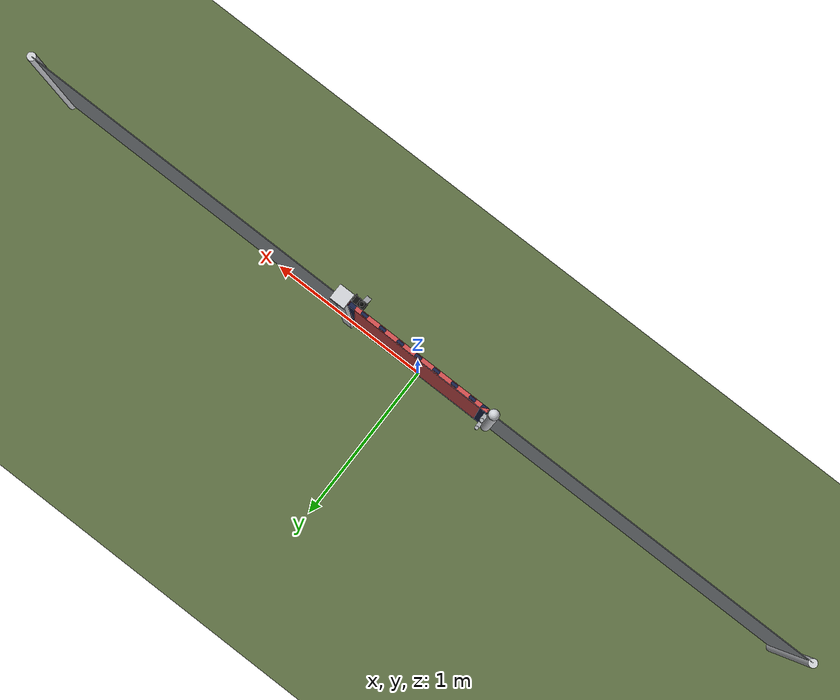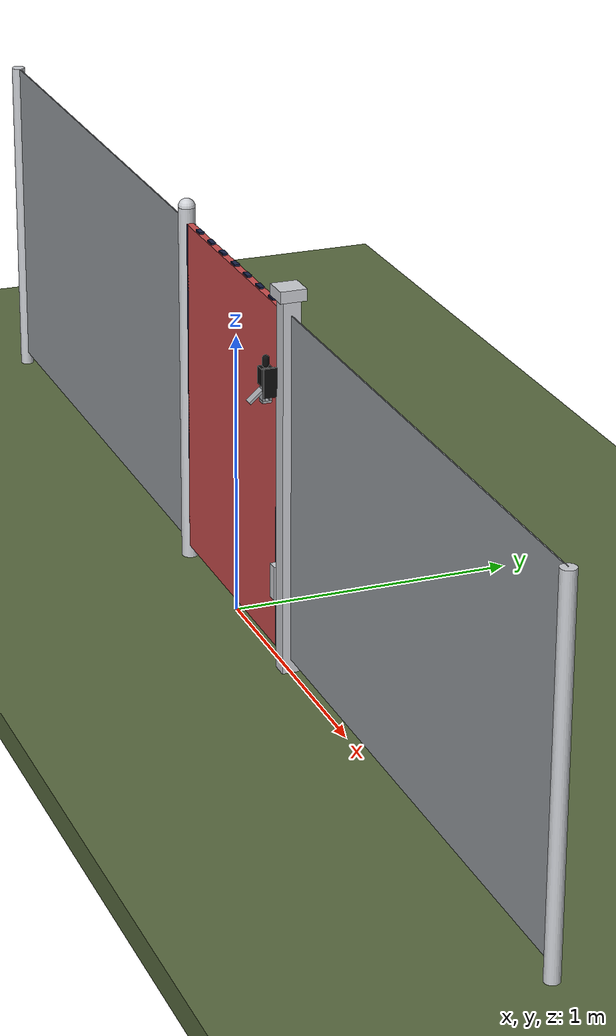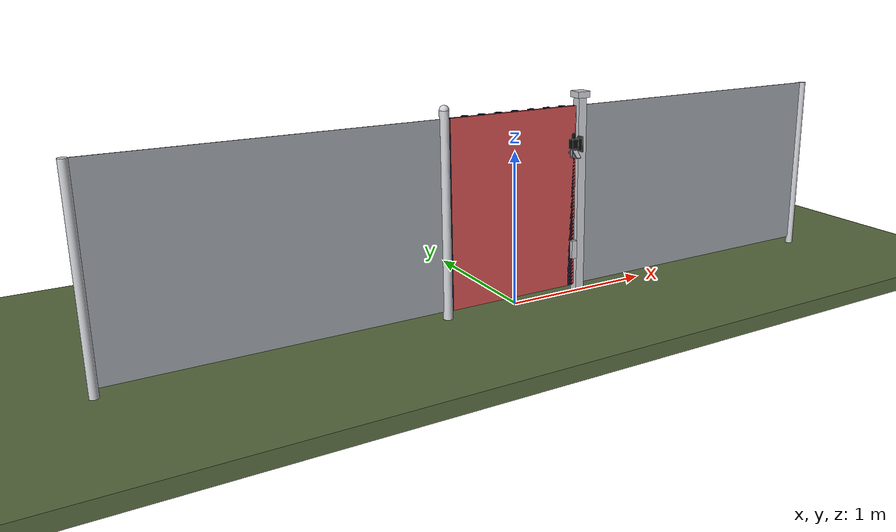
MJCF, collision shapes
<?xml version="1.0" ?>
<mujoco model="db0540_gate_swing_full">
  <compiler angle="radian" meshdir="../../hardware" texturedir="../../textures" autolimits="true" inertiafromgeom="false"/>
  <option timestep="0.002" integrator="implicitfast" cone="elliptic" impratio="10" noslip_iterations="3">
    <flag multiccd="enable"/>
  </option>
  <size memory="16M"/>
  <default>
    <geom condim="4" solref="0.005 1" solimp="0.95 0.99 0.001"/>
    <joint solreflimit="0.005 1" solimplimit="0.95 0.99 0.001"/>
    <tendon solreflimit="0.005 1"/>
    <equality solref="0.002 1"/>
  </default>
  <visual>
    <headlight ambient="0.4 0.4 0.4" diffuse="0.7 0.7 0.7" specular="0.2 0.2 0.2"/>
    <quality shadowsize="4096"/>
    <map znear="0.01" zfar="60"/>
  </visual>
  <asset>
    <mesh name="strap_hinge_78d1bbb966" file="strap_hinge_78d1bbb966.obj"/>
    <material name="mat_floor" rgba="0.35 0.42 0.25 1" specular="0.2" shininess="0.15" reflectance="0"/>
    <material name="mat_wall" rgba="0.78 0.76 0.7 1" specular="0.2" shininess="0.1" reflectance="0"/>
    <material name="mat_leaf" rgba="0.09 0.13 0.28 1" specular="0.23" shininess="0.33" reflectance="0.02"/>
    <material name="mat_hinge" rgba="0.65 0.66 0.68 1" specular="0.74" shininess="0.5" reflectance="0.36"/>
    <material name="mat_op_black_matte_metal" rgba="0.05 0.05 0.05 1" specular="0.38" shininess="0.3" reflectance="0.12"/>
    <material name="mat_keeper" rgba="0.65 0.66 0.68 1" specular="0.74" shininess="0.5" reflectance="0.36"/>
    <material name="mat_frame" rgba="0.8 0.81 0.83 1" specular="0.8" shininess="0.6" reflectance="0.4"/>
    <material name="mat_fence_mesh" rgba="0.6 0.62 0.64 0.5" specular="0.68" shininess="0.3" reflectance="0.1"/>
    <texture name="skybox" type="skybox" builtin="gradient" rgb1="0.6 0.7 0.85" rgb2="0.9 0.92 0.95" width="256" height="256"/>
  </asset>
  <worldbody>
    <light name="sun" pos="1.5 -2.5 4" dir="-0.3 0.5 -0.8" directional="true" diffuse="0.8 0.8 0.8" specular="0.3 0.3 0.3" castshadow="true"/>
    <light name="fill" pos="-1.5 2.5 3" dir="0.3 -0.5 -0.7" directional="true" diffuse="0.35 0.35 0.4" castshadow="false"/>
    <camera name="robot_view" pos="0 -1.875 1.135" xyaxes="1 0 0 0 0.26963 0.962964" fovy="52"/>
    <camera name="far_view" pos="0 1.875 1.135" xyaxes="-1 0 0 0 -0.26963 0.962964" fovy="52"/>
    <camera name="iso" pos="1.425 -1.575 1.435" xyaxes="0.741536 0.670913 0 -0.242917 0.268487 0.932151" fovy="46"/>
    <camera name="detail_handle" pos="0.587 -0.8475 1.345" xyaxes="0.97561 0.219512 0 -0.070934 0.315262 0.94635" fovy="38"/>
    <geom name="floor" type="box" size="6 6 0.05" pos="0 0 -0.05" material="mat_floor" group="0" contype="1" conaffinity="1" friction="0.8 0.005 0.0001" density="2400"/>
    <geom name="hinge_pintle_0" type="cylinder" size="0.008 0.02" pos="-0.453 0.05 0.174" material="mat_hinge" group="1" contype="0" conaffinity="0" density="7850"/>
    <geom name="hinge_pintle_1" type="cylinder" size="0.008 0.02" pos="-0.453 0.05 1.074" material="mat_hinge" group="1" contype="0" conaffinity="0" density="7850"/>
    <geom name="leaf_pin_housing" type="box" size="0.022 0.02 0.03" pos="0.407 -0.0475 1.015" material="mat_op_black_matte_metal" group="1" contype="0" conaffinity="0" density="1800"/>
    <geom name="leaf_pin_bracket" type="box" size="0.0165 0.02 0.01" pos="0.4455 -0.0475 1.024" material="mat_op_black_matte_metal" group="1" contype="0" conaffinity="0" density="1800"/>
    <geom name="leaf_pin_bracket_2" type="box" size="0.0165 0.02 0.006" pos="0.4455 -0.0475 0.994" material="mat_op_black_matte_metal" group="1" contype="0" conaffinity="0" density="1800"/>
    <geom name="leaf_pin_post_plate" type="box" size="0.003 0.026 0.05" pos="0.459 -0.0475 1.01" material="mat_op_black_matte_metal" group="1" contype="0" conaffinity="0" density="1800"/>
    <geom name="post_hinge" type="cylinder" size="0.03 0.65" pos="-0.486 0 0.65" material="mat_frame" group="0" contype="1" conaffinity="1" friction="0.6 0.005 0.0001" density="800"/>
    <geom name="post_hinge_cap" type="sphere" size="0.03" pos="-0.486 0 1.3" material="mat_frame" group="1" contype="0" conaffinity="0" density="800"/>
    <geom name="post_latch" type="box" size="0.03 0.03 0.65" pos="0.486 0 0.65" material="mat_frame" group="0" contype="1" conaffinity="1" friction="0.6 0.005 0.0001" density="800"/>
    <geom name="post_latch_cap" type="box" size="0.045 0.045 0.02" pos="0.486 0 1.32" material="mat_frame" group="1" contype="0" conaffinity="0" density="800"/>
    <geom name="gate_stop" type="box" size="0.02 0.012 0.06" pos="0.436 -0.0245 0.3" material="mat_frame" group="0" contype="1" conaffinity="1" friction="0.6 0.005 0.0001" density="800"/>
    <geom name="fence_l" type="box" size="1 0.002 0.6" pos="-1.516 0 0.65" material="mat_fence_mesh" group="0" contype="1" conaffinity="1" friction="0.6 0.005 0.0001" density="100"/>
    <geom name="fence_post_l" type="cylinder" size="0.025 0.625" pos="-2.516 0 0.625" material="mat_frame" group="0" contype="1" conaffinity="1" friction="0.6 0.005 0.0001" density="7850"/>
    <geom name="fence_r" type="box" size="1 0.002 0.6" pos="1.516 0 0.65" material="mat_fence_mesh" group="0" contype="1" conaffinity="1" friction="0.6 0.005 0.0001" density="100"/>
    <geom name="fence_post_r" type="cylinder" size="0.025 0.625" pos="2.516 0 0.625" material="mat_frame" group="0" contype="1" conaffinity="1" friction="0.6 0.005 0.0001" density="7850"/>
    <geom name="hinge_pintle_0_strap_0" type="box" size="0.0064 0.0065 0.016" pos="-0.453 0.036 0.174" material="mat_hinge" group="1" contype="0" conaffinity="0" density="7850"/>
    <geom name="hinge_pintle_1_strap_0" type="box" size="0.0064 0.0065 0.016" pos="-0.453 0.036 1.074" material="mat_hinge" group="1" contype="0" conaffinity="0" density="7850"/>
    <geom name="leaf_pin_post_plate_strap_0" type="box" size="0.014 0.0208 0.04" pos="0.4425 -0.0475 1.01" material="mat_op_black_matte_metal" group="1" contype="0" conaffinity="0" density="7850"/>
    <site name="approach_point" pos="0 -1.5 0" quat="1 0 0 0" size="0.05" rgba="0.2 0.9 0.2 0.5" group="4"/>
    <site name="goal_point" pos="0 1.5 0" quat="1 0 0 0" size="0.05" rgba="0.2 0.9 0.2 0.5" group="4"/>
    <site name="door_plane_center" pos="0 0 0.61" quat="1 0 0 0" size="0.02" rgba="0.2 0.9 0.2 0.5" group="4"/>
    <body name="leaf" pos="-0.456 0 0">
      <inertial pos="0.4372 0.000595 0.65349" mass="34.019832" quat="0.504861 -0.508879 -0.490212 -0.495832" diaginertia="2.430663873 4.25705252 6.67982135"/>
      <joint name="leaf_hinge" type="hinge" axis="0 0 1" pos="0.003 0.05 0" limited="true" range="0 1.745329" damping="8.14219" frictionloss="2.5673" stiffness="5" springref="-0.8" armature="0.02"/>
      <geom name="leaf_slab_col" type="box" size="0.45 0.0125 0.6" pos="0.453 0 0.65" material="mat_leaf" group="3" contype="1" conaffinity="1" rgba="0.8 0.3 0.3 0.25" friction="0.45 0.005 0.0001" density="1"/>
      <geom name="leaf_rail_b" type="box" size="0.45 0.0125 0.0225" pos="0.453 0 0.0725" material="mat_leaf" group="1" contype="0" conaffinity="0" density="1"/>
      <geom name="leaf_rail_t" type="box" size="0.45 0.0125 0.0225" pos="0.453 0 1.2275" material="mat_leaf" group="1" contype="0" conaffinity="0" density="1"/>
      <geom name="leaf_stile_h" type="box" size="0.0225 0.0125 0.6" pos="0.0255 0 0.65" material="mat_leaf" group="1" contype="0" conaffinity="0" density="1"/>
      <geom name="leaf_stile_l" type="box" size="0.0225 0.0125 0.6" pos="0.8805 0 0.65" material="mat_leaf" group="1" contype="0" conaffinity="0" density="1"/>
      <geom name="leaf_picket_0" type="box" size="0.02 0.00875 0.5865" pos="0.105857 0 0.67" material="mat_leaf" group="1" contype="0" conaffinity="0" density="1"/>
      <geom name="leaf_picket_1" type="box" size="0.02 0.00875 0.5865" pos="0.221571 0 0.67" material="mat_leaf" group="1" contype="0" conaffinity="0" density="1"/>
      <geom name="leaf_picket_2" type="box" size="0.02 0.00875 0.5865" pos="0.337286 0 0.67" material="mat_leaf" group="1" contype="0" conaffinity="0" density="1"/>
      <geom name="leaf_picket_3" type="box" size="0.02 0.00875 0.5865" pos="0.453 0 0.67" material="mat_leaf" group="1" contype="0" conaffinity="0" density="1"/>
      <geom name="leaf_picket_4" type="box" size="0.02 0.00875 0.5865" pos="0.568714 0 0.67" material="mat_leaf" group="1" contype="0" conaffinity="0" density="1"/>
      <geom name="leaf_picket_5" type="box" size="0.02 0.00875 0.5865" pos="0.684429 0 0.67" material="mat_leaf" group="1" contype="0" conaffinity="0" density="1"/>
      <geom name="leaf_picket_6" type="box" size="0.02 0.00875 0.5865" pos="0.800143 0 0.67" material="mat_leaf" group="1" contype="0" conaffinity="0" density="1"/>
      <geom name="hinge_strap_0" type="mesh" mesh="strap_hinge_78d1bbb966" pos="0.003 0.0155 0.2" material="mat_hinge" group="1" contype="0" conaffinity="0" density="7850"/>
      <geom name="hinge_strap_eye_0" type="cylinder" size="0.011 0.012" pos="0.003 0.05 0.2" material="mat_hinge" group="1" contype="0" conaffinity="0" density="7850"/>
      <geom name="hinge_strap_neck_0" type="box" size="0.012 0.02125 0.006" pos="0.003 0.03275 0.2" material="mat_hinge" group="1" contype="0" conaffinity="0" density="7850"/>
      <geom name="hinge_strap_1" type="mesh" mesh="strap_hinge_78d1bbb966" pos="0.003 0.0155 1.1" material="mat_hinge" group="1" contype="0" conaffinity="0" density="7850"/>
      <geom name="hinge_strap_eye_1" type="cylinder" size="0.011 0.012" pos="0.003 0.05 1.1" material="mat_hinge" group="1" contype="0" conaffinity="0" density="7850"/>
      <geom name="hinge_strap_neck_1" type="box" size="0.012 0.02125 0.006" pos="0.003 0.03275 1.1" material="mat_hinge" group="1" contype="0" conaffinity="0" density="7850"/>
      <geom name="leaf_cup_n" type="box" size="0.016 0.004 0.02" pos="0.863 -0.0595 0.955" material="mat_keeper" group="0" contype="1" conaffinity="1" friction="0.6 0.005 0.0001" density="7800"/>
      <geom name="leaf_cup_p" type="box" size="0.016 0.004 0.02" pos="0.863 -0.0355 0.955" material="mat_keeper" group="0" contype="1" conaffinity="1" friction="0.6 0.005 0.0001" density="7800"/>
      <geom name="leaf_cup_b" type="box" size="0.016 0.016 0.004" pos="0.863 -0.0475 0.931" material="mat_keeper" group="0" contype="1" conaffinity="1" friction="0.6 0.005 0.0001" density="7800"/>
      <geom name="leaf_cup_bracket" type="box" size="0.016 0.0095 0.004" pos="0.863 -0.022 0.955" material="mat_keeper" group="1" contype="0" conaffinity="0" density="7800"/>
      <geom name="leaf_cup_ramp" type="box" size="0.016 0.0301 0.004" pos="0.863 -0.083344 0.952012" quat="0.355381 -0.934722 0 0" material="mat_keeper" group="0" contype="1" conaffinity="1" friction="0.12 0.005 0.0001" density="7800"/>
      <site name="leaf_edge_mid" pos="0.903 0 0.6" quat="1 0 0 0" size="0.02" rgba="0.2 0.9 0.2 0.5" group="4"/>
    </body>
    <body name="leaf_pin" pos="0.407 -0.0475 1">
      <inertial pos="0 0 0.037519" mass="0.228168" quat="0.707107 0 0.707107 0" diaginertia="0.000010167 0.000346413 0.000346413"/>
      <joint name="leaf_pin_slide" type="slide" axis="0 0 1" limited="true" range="0 0.06" damping="9.526824" frictionloss="0.25" stiffness="60" springref="-0.016667" armature="0.15"/>
      <geom name="leaf_pin_geom" type="capsule" size="0.006 0.0525" pos="0 0 0.0025" material="mat_op_black_matte_metal" group="0" contype="1" conaffinity="1" friction="0.6 0.005 0.0001" density="7850"/>
      <geom name="leaf_pin_knob" type="capsule" size="0.012 0.01" pos="0 0 0.065" material="mat_op_black_matte_metal" group="0" contype="1" conaffinity="1" friction="0.6 0.005 0.0001" density="7850"/>
      <site name="leaf_grip_pin" pos="0 0 0.065" quat="1 0 0 0" size="0.012" rgba="0.2 0.9 0.2 0.5" group="4"/>
    </body>
  </worldbody>
  <sensor>
    <jointpos name="leaf_hinge_pos" joint="leaf_hinge"/>
    <jointvel name="leaf_hinge_vel" joint="leaf_hinge"/>
    <jointpos name="leaf_pin_slide_pos" joint="leaf_pin_slide"/>
    <jointvel name="leaf_pin_slide_vel" joint="leaf_pin_slide"/>
  </sensor>
</mujoco>
